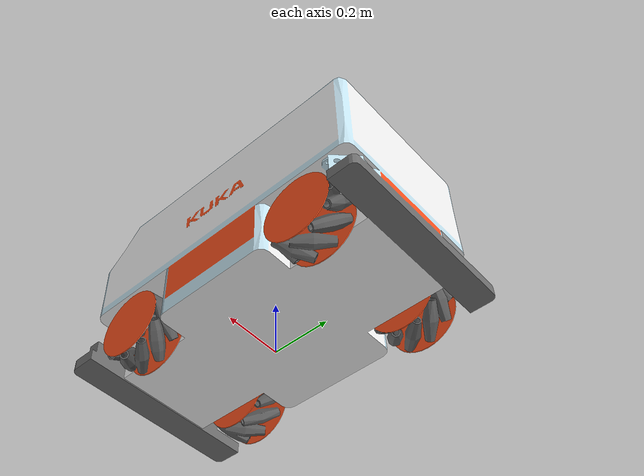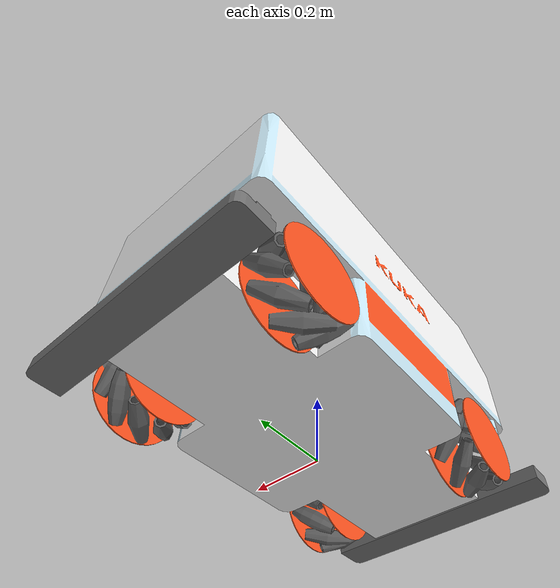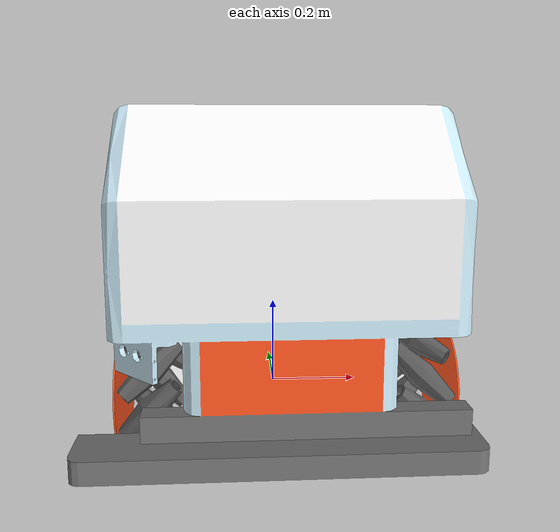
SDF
<?xml version="1.0" encoding="UTF-8"?>
<sdf version="1.4">
   <model name="kuka-omnirob">
      <link name="chassis">
         <pose>0 0 0 0 0 0</pose>
         <collision name="collision">
            <geometry>
               <mesh>
                  <scale>1 1 1</scale>
                  <uri>model://kuka-omnirob/meshes/omnirobB.dae</uri>
               </mesh>
            </geometry>
         </collision>
         <visual name="visual">
            <geometry>
               <mesh>
                  <scale>1 1 1</scale>
                  <uri>model://kuka-omnirob/meshes/omnirobB.dae</uri>
               </mesh>
            </geometry>
         </visual>
         <inertial>
            <mass value="10" />
            <inertia ixx="1.0" ixy="0.0" ixz="0.0" iyy="1.0" iyz="0.0" izz="1.0" />
         </inertial>
         <gravity>1</gravity>
      </link>
      <link name="front_left_wheel">
         <pose>0.242 -0.34687 0.12999 0 0 0</pose>
         <collision name="collision">
            <geometry>
               <mesh>
                  <scale>1 1 1</scale>
                  <uri>model://kuka-omnirob/meshes/omnirobFLWheel.dae</uri>
               </mesh>
            </geometry>
         </collision>
         <visual name="visual">
            <geometry>
               <mesh>
                  <scale>1 1 1</scale>
                  <uri>model://kuka-omnirob/meshes/omnirobFLWheel.dae</uri>
               </mesh>
            </geometry>
         </visual>
         <inertial>
            <mass value="10" />
            <inertia ixx="1.0" ixy="0.0" ixz="0.0" iyy="1.0" iyz="0.0" izz="1.0" />
         </inertial>
      </link>
      <link name="front_right_wheel">
         <pose>-0.242 -0.3466 0.12999 0 0 0</pose>
         <collision name="collision">
            <geometry>
               <mesh>
                  <scale>1 1 1</scale>
                  <uri>model://kuka-omnirob/meshes/omnirobFRWheel.dae</uri>
               </mesh>
            </geometry>
         </collision>
         <visual name="visual">
            <geometry>
               <mesh>
                  <scale>1 1 1</scale>
                  <uri>model://kuka-omnirob/meshes/omnirobFRWheel.dae</uri>
               </mesh>
            </geometry>
         </visual>
         <inertial>
            <mass value="10" />
            <inertia ixx="1.0" ixy="0.0" ixz="0.0" iyy="1.0" iyz="0.0" izz="1.0" />
         </inertial>
      </link>
      <link name="back_left_wheel">
         <pose>0.242 0.3474 0.12999 0 0 0</pose>
         <collision name="collision">
            <geometry>
               <mesh>
                  <scale>1 1 1</scale>
                  <uri>model://kuka-omnirob/meshes/omnirobBLWheel.dae</uri>
               </mesh>
            </geometry>
         </collision>
         <visual name="visual">
            <geometry>
               <mesh>
                  <scale>1 1 1</scale>
                  <uri>model://kuka-omnirob/meshes/omnirobBLWheel.dae</uri>
               </mesh>
            </geometry>
         </visual>
         <inertial>
            <mass value="10" />
            <inertia ixx="1.0" ixy="0.0" ixz="0.0" iyy="1.0" iyz="0.0" izz="1.0" />
         </inertial>
      </link>
      <link name="back_right_wheel">
         <pose>-0.242 0.3474 0.12999 0 0 0</pose>
         <collision name="collision">
            <geometry>
               <mesh>
                  <scale>1 1 1</scale>
                  <uri>model://kuka-omnirob/meshes/omnirobBRWheel.dae</uri>
               </mesh>
            </geometry>
         </collision>
         <visual name="visual">
            <geometry>
               <mesh>
                  <scale>1 1 1</scale>
                  <uri>model://kuka-omnirob/meshes/omnirobBRWheel.dae</uri>
               </mesh>
            </geometry>
         </visual>
         <inertial>
            <mass value="10" />
            <inertia ixx="1.0" ixy="0.0" ixz="0.0" iyy="1.0" iyz="0.0" izz="1.0" />
         </inertial>
      </link>
      <!-- Joints -->
      <joint type="revolute" name="front_left_hinge">
         <pose>0 0 0 0 0 0</pose>
         <parent>chassis</parent>
         <child>front_left_wheel</child>
         <axis>
            <xyz>1 0 0</xyz>
         </axis>
      </joint>
      <joint type="revolute" name="front_right_hinge">
         <pose>0 0 0 0 0 0</pose>
         <parent>chassis</parent>
         <child>front_right_wheel</child>
         <axis>
            <xyz>1 0 0</xyz>
         </axis>
      </joint>
      <joint type="revolute" name="back_left_hinge">
         <pose>0 0 0 0 0 0</pose>
         <parent>chassis</parent>
         <child>back_left_wheel</child>
         <axis>
            <xyz>1 0 0</xyz>
         </axis>
      </joint>
      <joint type="revolute" name="back_right_hinge">
         <pose>0 0 0 0 0 0</pose>
         <parent>chassis</parent>
         <child>back_right_wheel</child>
         <axis>
            <xyz>1 0 0</xyz>
         </axis>
      </joint>
   </model>
</sdf>
